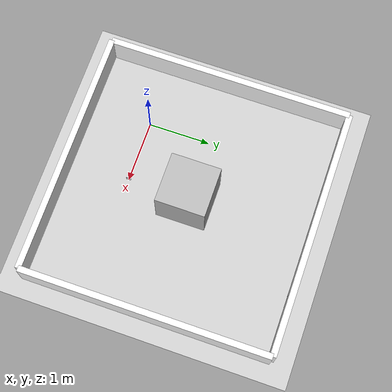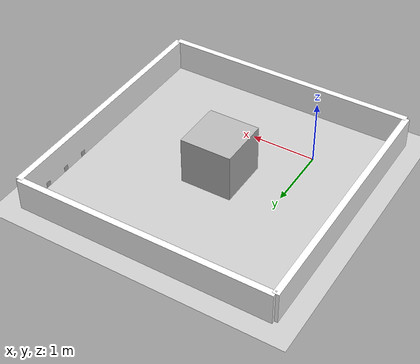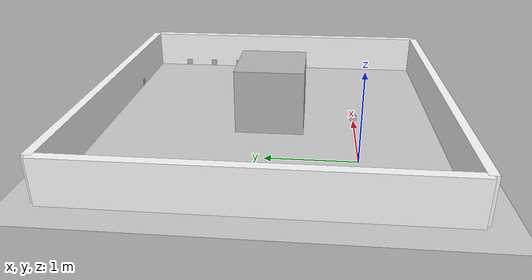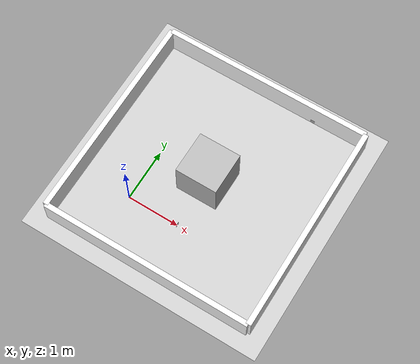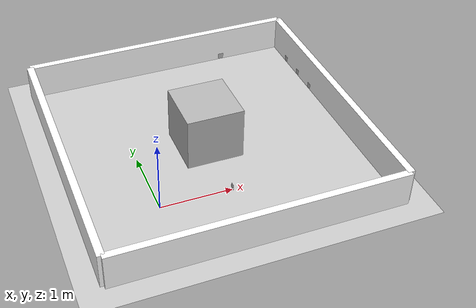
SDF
<sdf version="1.8">
 <world name="markers_world">
  <physics name="1ms" type="ignored">
   <max_step_size>0.001</max_step_size>
   <real_time_factor>1.0</real_time_factor>
  </physics>
  <plugin filename="libignition-gazebo-physics-system.so" name="ignition::gazebo::systems::Physics"/>
  <plugin filename="libignition-gazebo-user-commands-system.so" name="ignition::gazebo::systems::UserCommands"/>
  <plugin filename="libignition-gazebo-scene-broadcaster-system.so" name="ignition::gazebo::systems::SceneBroadcaster"/>
  <scene><ambient>1.0 1.0 1.0</ambient><background>0.8 0.8 0.8</background><grid>true</grid></scene>
  <light type="directional" name="sun">
   <pose>0 0 10 0 0 0</pose>
   <diffuse>0.8 0.8 0.8 1</diffuse>
   <specular>0.2 0.2 0.2 1</specular>
   <attenuation>
    <range>1000</range>
    <constant>0.9</constant>
    <linear>0.01</linear>
    <quadratic>0.001</quadratic>
   </attenuation>
   <direction>-0.5 0.1 -0.9</direction>
  </light>
  <model name="ground_plane">
   <static>true</static>
   <link name="link">
    <collision name="collision"><geometry><plane><normal>0 0 1</normal></plane></geometry></collision>
    <visual name="visual">
     <geometry><plane><normal>0 0 1</normal><size>100 100</size></plane></geometry>
     <material>
      <ambient>0.8 0.8 0.8 1</ambient>
      <diffuse>0.8 0.8 0.8 1</diffuse>
      <specular>0.8 0.8 0.8 1</specular>
     </material>
    </visual>
   </link>
  </model>
  <include><uri>model://block</uri><pose>1 1 0.0 0 0 0</pose></include>
  <include><uri>model://walls</uri><name>wall1</name><pose>3.0 1.0 0.0 0 0 0</pose></include>
  <include><uri>model://walls</uri><name>wall2</name><pose>1.0 3.0 0.0 0 0 1.5708</pose></include>
  <include><uri>model://walls</uri><name>wall3</name><pose>1.0 -1.0 0.0 0 0 1.5708</pose></include>
  <include><uri>model://walls</uri><name>wall4</name><pose>-1.0 1.0 0.0 0 0 0</pose></include>
  <include><uri>model://aruco000</uri><pose>1.0 0.0 0.05 0 0 0</pose></include>
  <include><uri>model://aruco001</uri><pose>2.95 2.5 0.05 0 0 0</pose></include>
  <include><uri>model://aruco002</uri><pose>2.95 2.1 0.05 0 0 0</pose></include>
  <include><uri>model://aruco003</uri><pose>2.95 1.7 0.05 0 0 0</pose></include>
  <include><uri>model://aruco004</uri><pose>1.0 0.8 0.05 0 0 1.5708</pose></include>
  <include><uri>model://aruco005</uri><pose>2.0 2.95 0.05 0 0 1.5708</pose></include>
 </world>
</sdf>

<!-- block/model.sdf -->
<sdf version='1.4'>
    <model name='block'>
    <static>true</static>

        <link name='link0'>
            <pose>0 0 0.25 0 0 0</pose>

            <visual name='visual'>
                <geometry>
                    <mesh>
                        <uri>./meshes/block.obj</uri>
                    </mesh>
                </geometry>

            </visual>

            <collision name='collision'>
                <pose>0 0 0 0 0 0</pose>
                <geometry>
                    <box>
                        <size>0.4 0.4 0.5</size>
                    </box>
                </geometry>
            </collision>

        </link>

    </model>

</sdf>

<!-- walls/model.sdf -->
<sdf version='1.4'>
    <model name='walls'>
    <static>true</static>

        <link name='link0'>
            <pose>0 0 0.25 0 0 0</pose>

            <visual name='visual'>
                <geometry>
                    <box>
                        <size>0.1 4.0 0.5</size>
                    </box>
                </geometry>
                <material>
                    <ambient>1 1 1 1</ambient>
                    <diffuse>1 1 1 1</diffuse>
                    <specular>0.5 0.5 0.5 1</specular>
                    <emissive>0 0 0 1</emissive>
                </material>
            </visual>

            <collision name='collision'>
                <pose>0 0 0 0 0 0</pose>
                <geometry>
                    <box>
                        <size>0.1 4.0 0.5</size>
                    </box>
                </geometry>
            </collision>

        </link>

    </model>

</sdf>

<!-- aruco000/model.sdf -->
<sdf version='1.4'>
    <model name='aruco000_cv'>
    <static>true</static>

        <link name='link0'>
            <pose>0 0 0 3.1415 0 3.1415</pose>

            <visual name='visual'>
                <geometry>
                    <mesh>
                        <uri>./meshes/aruco000.dae</uri>
                    </mesh>
                </geometry>
            </visual>

            <collision name='collision'>
                <pose>0 0 -0.03 0 0 0</pose>
                <geometry>
                    <box>
                        <size>0.001 0.04 0.04</size>
                    </box>
                </geometry>
            </collision>

        </link>

    </model>

</sdf>

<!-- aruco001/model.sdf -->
<sdf version='1.4'>
    <model name='aruco001_cv'>
    <static>true</static>

        <link name='link0'>
            <pose>0 0 0 0 0 3.1415</pose>

            <visual name='visual'>
                <geometry>
                    <mesh>
                        <uri>./meshes/aruco001.dae</uri>
                    </mesh>
                </geometry>
            </visual>

            <collision name='collision'>
                <pose>0 0 0 0 0 0</pose>
                <geometry>
                    <box>
                        <size>0.001 0.04 0.04</size>
                    </box>
                </geometry>
            </collision>

        </link>

    </model>

</sdf>

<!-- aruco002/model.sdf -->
<sdf version='1.4'>
    <model name='aruco002_cv'>
    <static>true</static>

        <link name='link0'>
            <pose>0 0 0 0 0 3.1415</pose>

            <visual name='visual'>
                <geometry>
                    <mesh>
                        <uri>./meshes/aruco002.dae</uri>
                    </mesh>
                </geometry>
            </visual>

            <collision name='collision'>
                <pose>0 0 0 0 0 0</pose>
                <geometry>
                    <box>
                        <size>0.001 0.04 0.04</size>
                    </box>
                </geometry>
            </collision>

        </link>

    </model>

</sdf>

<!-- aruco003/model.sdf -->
<sdf version='1.4'>
    <model name='aruco003_cv'>
    <static>true</static>

        <link name='link0'>
            <pose>0 0 0 0 0 3.1415</pose>

            <visual name='visual'>
                <geometry>
                    <mesh>
                        <uri>./meshes/aruco003.dae</uri>
                    </mesh>
                </geometry>
            </visual>

            <collision name='collision'>
                <pose>0 0 0 0 0 0</pose>
                <geometry>
                    <box>
                        <size>0.001 0.04 0.04</size>
                    </box>
                </geometry>
            </collision>

        </link>

    </model>

</sdf>

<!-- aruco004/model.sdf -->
<sdf version='1.4'>
    <model name='aruco004_cv'>
    <static>true</static>

        <link name='link0'>
            <pose>0 0 0 0 0 3.1415</pose>

            <visual name='visual'>
                <geometry>
                    <mesh>
                        <uri>./meshes/aruco004.dae</uri>
                    </mesh>
                </geometry>
            </visual>

            <collision name='collision'>
                <pose>0 0 0 0 0 0</pose>
                <geometry>
                    <box>
                        <size>0.001 0.04 0.04</size>
                    </box>
                </geometry>
            </collision>

        </link>

    </model>

</sdf>

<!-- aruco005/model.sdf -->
<sdf version='1.4'>
    <model name='aruco005_cv'>
    <static>true</static>

        <link name='link0'>
            <pose>0 0 0 0 0 3.1415</pose>

            <visual name='visual'>
                <geometry>
                    <mesh>
                        <uri>./meshes/aruco005.dae</uri>
                    </mesh>
                </geometry>
            </visual>

            <collision name='collision'>
                <pose>0 0 0 0 0 0</pose>
                <geometry>
                    <box>
                        <size>0.001 0.04 0.04</size>
                    </box>
                </geometry>
            </collision>

        </link>

    </model>

</sdf>
